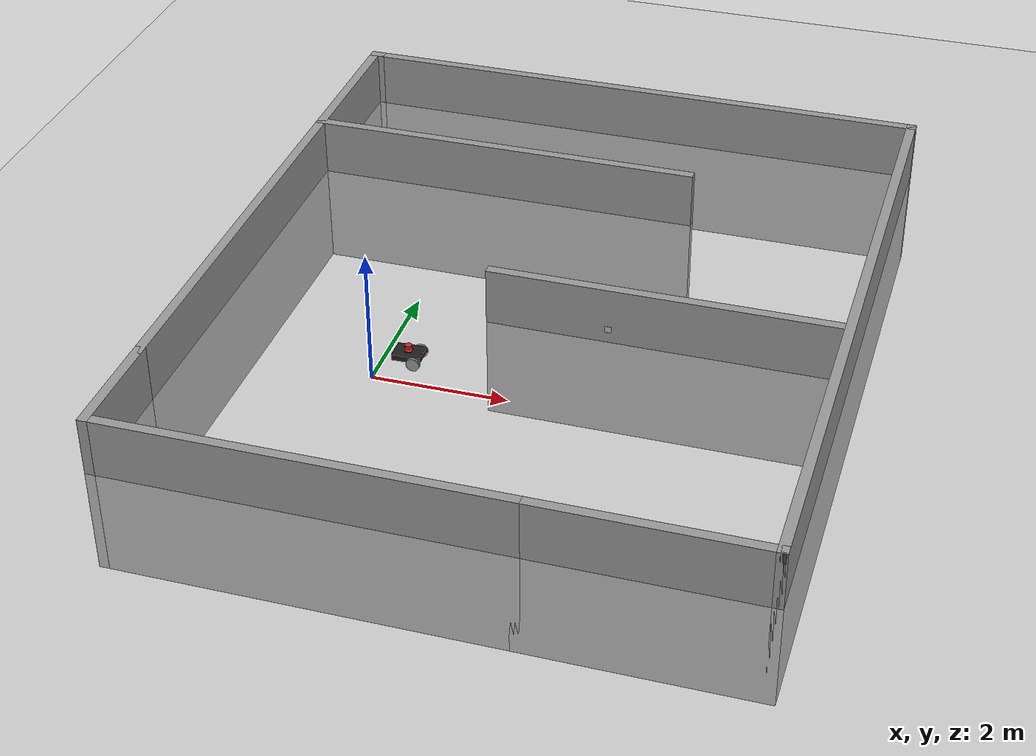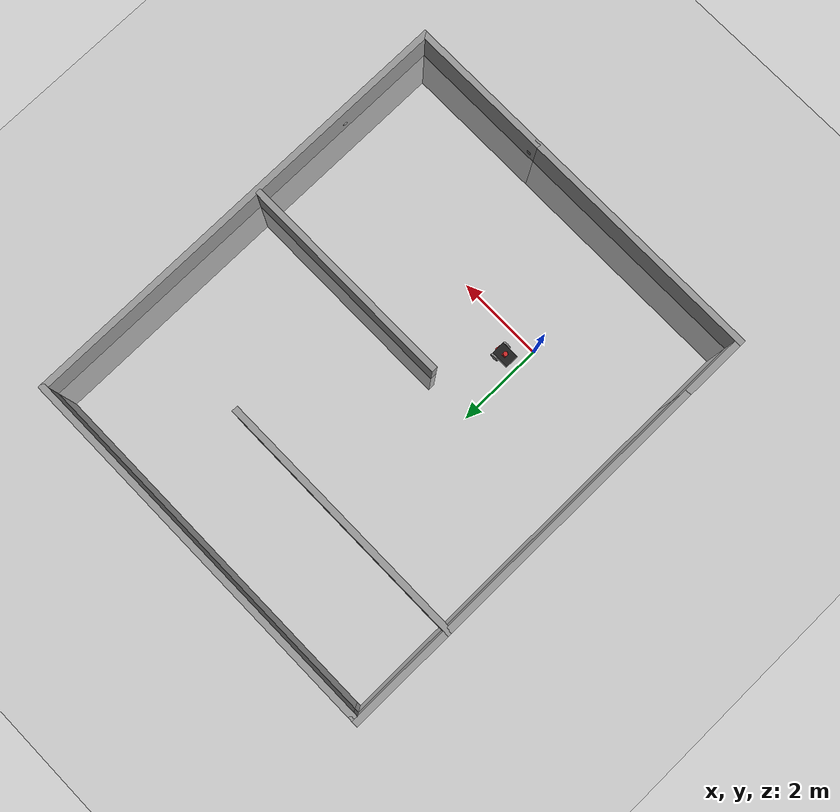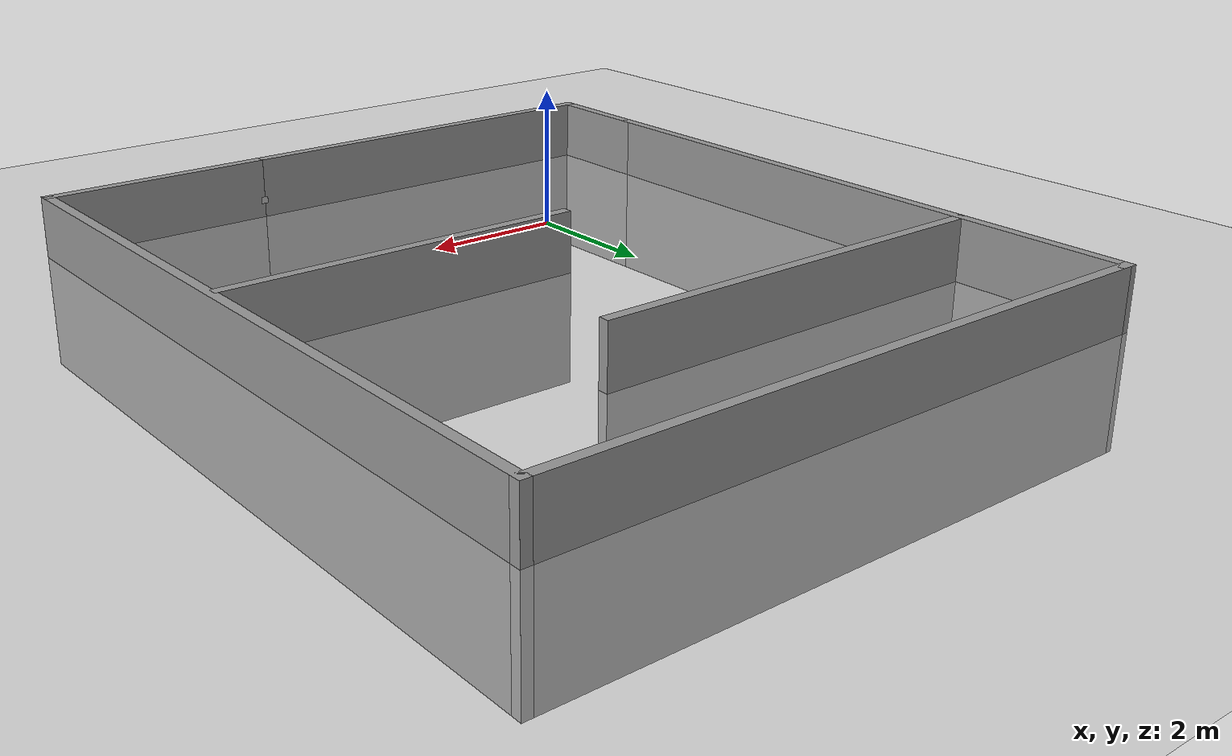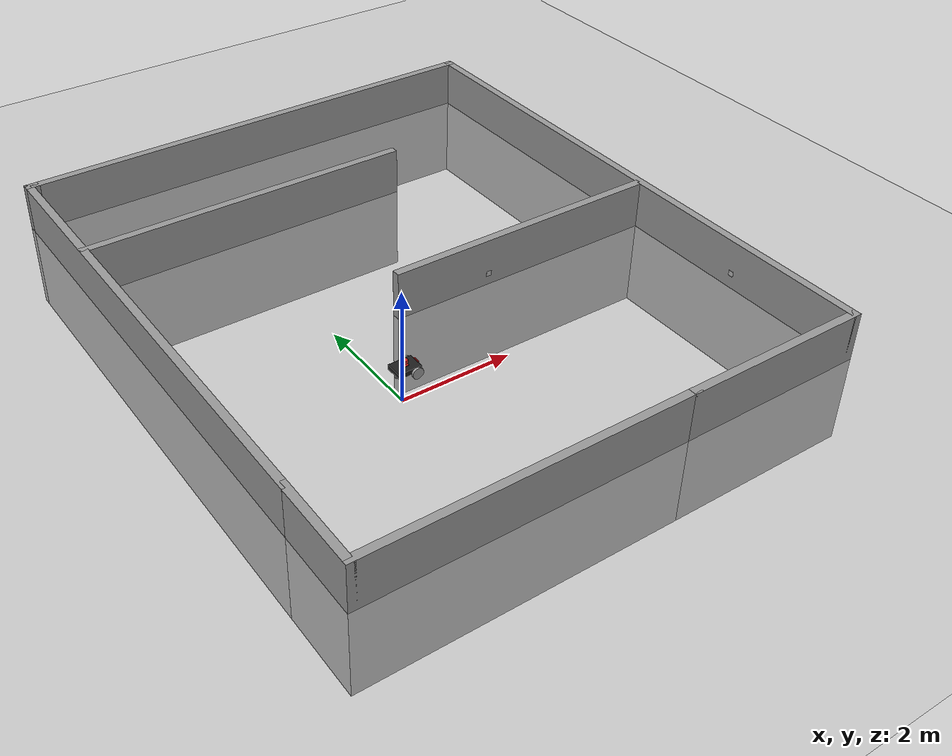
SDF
<sdf version="1.7">
 <world name="default">
  <model name="ground_plane">
   <static>1</static>
   <link name="link">
    <collision name="collision">
     <geometry><plane><normal>0 0 1</normal><size>100 100</size></plane></geometry>
     <surface><friction><ode><mu>100</mu><mu2>50</mu2></ode></friction></surface>
    </collision>
    <visual name="visual">
     <cast_shadows>0</cast_shadows>
     <geometry><plane><normal>0 0 1</normal><size>100 100</size></plane></geometry>
     <material>
      <script><uri>file://media/materials/scripts/gazebo.material</uri><name>Gazebo/Grey</name></script>
     </material>
    </visual>
   </link>
  </model>
  <light name="sun" type="directional">
   <pose>0 0 10 0 -0 0</pose>
   <diffuse>0.8 0.8 0.8 1</diffuse>
   <specular>0.2 0.2 0.2 1</specular>
   <attenuation>
    <range>1000</range>
    <constant>0.9</constant>
    <linear>0.01</linear>
    <quadratic>0.001</quadratic>
   </attenuation>
   <direction>-0.5 0.1 -0.9</direction>
   <spot><inner_angle>0</inner_angle><outer_angle>0</outer_angle><falloff>0</falloff></spot>
  </light>
  <scene><shadows>0</shadows><ambient>0.4 0.4 0.4 1</ambient><background>0.7 0.7 0.7 1</background></scene>
  <physics type="ode">
   <real_time_update_rate>1000</real_time_update_rate>
   <max_step_size>0.001</max_step_size>
   <real_time_factor>1</real_time_factor>
   <ode>
    <solver>
     <type>quick</type>
     <iters>150</iters>
     <precon_iters>0</precon_iters>
     <sor>1.4</sor>
     <use_dynamic_moi_rescaling>1</use_dynamic_moi_rescaling>
    </solver>
    <constraints>
     <cfm>1e-05</cfm>
     <erp>0.2</erp>
     <contact_max_correcting_vel>2000</contact_max_correcting_vel>
     <contact_surface_layer>0.01</contact_surface_layer>
    </constraints>
   </ode>
  </physics>
  <model name="maze">
   <pose>-0.00079 0.099055 -1.63073 0 -0 0</pose>
   <static>1</static>
   <frame name="maze::__model__" attached_to="maze::Wall_0">
    <pose relative_to="__model__">1.79 2.305 0 0 -0 0</pose>
   </frame>
   <link name="maze::Wall_0">
    <collision name="Wall_0_Collision">
     <geometry><box><size>1.75 0.15 2.5</size></box></geometry>
     <pose>0 0 1.25 0 -0 0</pose>
    </collision>
    <visual name="Wall_0_Visual">
     <pose>0 0 1.25 0 -0 0</pose>
     <geometry><box><size>1.75 0.15 2.5</size></box></geometry>
     <material>
      <script><uri>file://media/materials/scripts/gazebo.material</uri><name>Gazebo/Grey</name></script>
      <ambient>1 1 1 1</ambient>
     </material>
     <meta><layer>0</layer></meta>
    </visual>
    <pose relative_to="maze::__model__">-4.6 -4.625 0 0 -0 -1.5708</pose>
   </link>
   <link name="maze::Wall_1">
    <collision name="Wall_1_Collision">
     <geometry><box><size>6 0.15 2.5</size></box></geometry>
     <pose>0 0 1.25 0 -0 0</pose>
    </collision>
    <visual name="Wall_1_Visual">
     <pose>0 0 1.25 0 -0 0</pose>
     <geometry><box><size>6 0.15 2.5</size></box></geometry>
     <material>
      <script><uri>file://media/materials/scripts/gazebo.material</uri><name>Gazebo/Grey</name></script>
      <ambient>1 1 1 1</ambient>
     </material>
     <meta><layer>0</layer></meta>
    </visual>
    <pose relative_to="maze::__model__">-1.675 -5.425 0 0 -0 0</pose>
   </link>
   <link name="maze::Wall_11">
    <collision name="Wall_11_Collision">
     <geometry><box><size>6.25 0.15 2.5</size></box></geometry>
     <pose>0 0 1.25 0 -0 0</pose>
    </collision>
    <visual name="Wall_11_Visual">
     <pose>0 0 1.25 0 -0 0</pose>
     <geometry><box><size>6.25 0.15 2.5</size></box></geometry>
     <material>
      <script><uri>file://media/materials/scripts/gazebo.material</uri><name>Gazebo/Grey</name></script>
      <ambient>1 1 1 1</ambient>
     </material>
     <meta><layer>0</layer></meta>
    </visual>
    <pose relative_to="maze::__model__">-1.54942 2.92825 0 0 -0 0</pose>
   </link>
   <link name="maze::Wall_13">
    <collision name="Wall_13_Collision">
     <geometry><box><size>5.25 0.15 2.5</size></box></geometry>
     <pose>0 0 1.25 0 -0 0</pose>
    </collision>
    <visual name="Wall_13_Visual">
     <pose>0 0 1.25 0 -0 0</pose>
     <geometry><box><size>5.25 0.15 2.5</size></box></geometry>
     <material>
      <script><uri>file://media/materials/scripts/gazebo.material</uri><name>Gazebo/Grey</name></script>
      <ambient>1 1 1 1</ambient>
     </material>
     <meta><layer>0</layer></meta>
    </visual>
    <pose relative_to="maze::__model__">1.94541 -0.534779 0 0 -0 3.14159</pose>
   </link>
   <link name="maze::Wall_5">
    <collision name="Wall_5_Collision">
     <geometry><box><size>3.5 0.15 2.5</size></box></geometry>
     <pose>0 0 1.25 0 -0 0</pose>
    </collision>
    <visual name="Wall_5_Visual">
     <pose>0 0 1.25 0 -0 0</pose>
     <geometry><box><size>3.5 0.15 2.5</size></box></geometry>
     <material>
      <script><uri>file://media/materials/scripts/gazebo.material</uri><name>Gazebo/Grey</name></script>
      <ambient>1 1 1 1</ambient>
     </material>
     <meta><layer>0</layer></meta>
    </visual>
    <pose relative_to="maze::__model__">2.925 -5.425 0 0 -0 0</pose>
   </link>
   <link name="maze::Wall_6">
    <collision name="Wall_6_Collision">
     <geometry><box><size>11 0.15 2.5</size></box></geometry>
     <pose>0 0 1.25 0 -0 0</pose>
    </collision>
    <visual name="Wall_6_Visual">
     <pose>0 0 1.25 0 -0 0</pose>
     <geometry><box><size>11 0.15 2.5</size></box></geometry>
     <material>
      <script><uri>file://media/materials/scripts/gazebo.material</uri><name>Gazebo/Grey</name></script>
      <ambient>1 1 1 1</ambient>
     </material>
     <meta><layer>0</layer></meta>
    </visual>
    <pose relative_to="maze::__model__">4.6 0 0 0 -0 1.5708</pose>
   </link>
   <link name="maze::Wall_7">
    <collision name="Wall_7_Collision">
     <geometry><box><size>9.25 0.15 2.5</size></box></geometry>
     <pose>0 0 1.25 0 -0 0</pose>
    </collision>
    <visual name="Wall_7_Visual">
     <pose>0 0 1.25 0 -0 0</pose>
     <geometry><box><size>9.25 0.15 2.5</size></box></geometry>
     <material>
      <script><uri>file://media/materials/scripts/gazebo.material</uri><name>Gazebo/Grey</name></script>
      <ambient>1 1 1 1</ambient>
     </material>
     <meta><layer>0</layer></meta>
    </visual>
    <pose relative_to="maze::__model__">0.05 5.425 0 0 -0 3.14159</pose>
   </link>
   <link name="maze::Wall_8">
    <collision name="Wall_8_Collision">
     <geometry><box><size>0.25 0.15 2.5</size></box></geometry>
     <pose>0 0 1.25 0 -0 0</pose>
    </collision>
    <visual name="Wall_8_Visual">
     <pose>0 0 1.25 0 -0 0</pose>
     <geometry><box><size>0.25 0.15 2.5</size></box></geometry>
     <material>
      <script><uri>file://media/materials/scripts/gazebo.material</uri><name>Gazebo/Grey</name></script>
      <ambient>1 1 1 1</ambient>
     </material>
     <meta><layer>0</layer></meta>
    </visual>
    <pose relative_to="maze::__model__">-4.55 5.425 0 0 -0 3.14159</pose>
   </link>
   <link name="maze::Wall_9">
    <collision name="Wall_9_Collision">
     <geometry><box><size>9.4 0.15 2.5</size></box></geometry>
     <pose>0 0 1.25 0 -0 0</pose>
    </collision>
    <visual name="Wall_9_Visual">
     <pose>0 0 1.25 0 -0 0</pose>
     <geometry><box><size>9.4 0.15 2.5</size></box></geometry>
     <material>
      <script><uri>file://media/materials/scripts/gazebo.material</uri><name>Gazebo/Grey</name></script>
      <ambient>1 1 1 1</ambient>
     </material>
     <meta><layer>0</layer></meta>
    </visual>
    <pose relative_to="maze::__model__">-4.6 0.8 0 0 -0 -1.5708</pose>
   </link>
   <static>1</static>
  </model>
  <gravity>0 0 -9.8</gravity>
  <magnetic_field>6e-06 2.3e-05 -4.2e-05</magnetic_field>
  <atmosphere type="adiabatic"/>
  <audio><device>default</device></audio>
  <spherical_coordinates>
   <surface_model>EARTH_WGS84</surface_model>
   <latitude_deg>0</latitude_deg>
   <longitude_deg>0</longitude_deg>
   <elevation>0</elevation>
   <heading_deg>0</heading_deg>
  </spherical_coordinates>
  <model name="mobile_robot">
   <link name="base_footprint">
    <inertial>
     <pose>-0.123964 0 0.148112 1.5708 -0 1.5708</pose>
     <mass>15.76</mass>
     <inertia>
      <ixx>0.250867</ixx>
      <ixy>-1.95697e-18</ixy>
      <ixz>-3.16426e-18</ixz>
      <iyy>0.354513</iyy>
      <iyz>-0.00690832</iyz>
      <izz>0.139322</izz>
     </inertia>
    </inertial>
    <collision name="base_footprint_fixed_joint_lump__base_link_collision">
     <pose>-0.12 0 0.15 0 -0 0</pose>
     <geometry><box><size>0.42 0.31 0.09</size></box></geometry>
    </collision>
    <collision name="base_footprint_fixed_joint_lump__camera_link_collision_1">
     <pose>0.095 0 0.2 0 -0 0</pose>
     <geometry><box><size>0.015 0.13 0.022</size></box></geometry>
    </collision>
    <collision name="base_footprint_fixed_joint_lump__caster_link_collision_2">
     <pose>-0.26 0 0.055 0 -0 0</pose>
     <geometry><sphere><radius>0.0525</radius></sphere></geometry>
     <surface>
      <contact><ode><kp>1e+07</kp><kd>1000</kd><max_vel>1</max_vel><min_depth>0.001</min_depth></ode></contact>
      <friction><ode><mu>0.1</mu><mu2>0.1</mu2></ode></friction>
     </surface>
    </collision>
    <collision name="base_footprint_fixed_joint_lump__imu_link_collision_3">
     <pose>-0.12 0 0.16 0 -0 0</pose>
     <geometry><box><size>0.1 0.1 0.1</size></box></geometry>
    </collision>
    <collision name="base_footprint_fixed_joint_lump__lidar_link_collision_4">
     <pose>-0.12 0 0.27 0 -0 0</pose>
     <geometry><cylinder><length>0.055</length><radius>0.0508</radius></cylinder></geometry>
    </collision>
    <visual name="base_footprint_fixed_joint_lump__base_link_visual">
     <pose>-0.12 0 0.15 0 -0 0</pose>
     <geometry><box><size>0.42 0.31 0.09</size></box></geometry>
     <material>
      <script><name>Gazebo/FlatBlack</name><uri>file://media/materials/scripts/gazebo.material</uri></script>
     </material>
    </visual>
    <visual name="base_footprint_fixed_joint_lump__camera_link_visual_1">
     <pose>0.095 0 0.2 0 -0 0</pose>
     <geometry><box><size>0.015 0.13 0.022</size></box></geometry>
     <material>
      <script><name>Gazebo/Red</name><uri>file://media/materials/scripts/gazebo.material</uri></script>
     </material>
    </visual>
    <visual name="base_footprint_fixed_joint_lump__caster_link_visual_2">
     <pose>-0.26 0 0.055 0 -0 0</pose>
     <geometry><sphere><radius>0.0525</radius></sphere></geometry>
     <material>
      <script><name>Gazebo/Grey</name><uri>file://media/materials/scripts/gazebo.material</uri></script>
     </material>
    </visual>
    <visual name="base_footprint_fixed_joint_lump__imu_link_visual_3">
     <pose>-0.12 0 0.16 0 -0 0</pose>
     <geometry><box><size>0.1 0.1 0.1</size></box></geometry>
     <material>
      <script><name>Gazebo/Red</name><uri>file://media/materials/scripts/gazebo.material</uri></script>
     </material>
    </visual>
    <visual name="base_footprint_fixed_joint_lump__lidar_link_visual_4">
     <pose>-0.12 0 0.27 0 -0 0</pose>
     <geometry><cylinder><length>0.055</length><radius>0.0508</radius></cylinder></geometry>
     <material>
      <script><name>Gazebo/Red</name><uri>file://media/materials/scripts/gazebo.material</uri></script>
     </material>
    </visual>
    <sensor name="pi_camera" type="camera">
     <update_rate>30</update_rate>
     <always_on>1</always_on>
     <visualize>1</visualize>
     <camera>
      <horizontal_fov>1.0856</horizontal_fov>
      <image><width>640</width><height>480</height><format>R8G8B8</format></image>
      <clip><near>0.03</near><far>100</far></clip>
      <noise><type>gaussian</type><mean>0</mean><stddev>0.007</stddev></noise>
     </camera>
     <plugin name="camera_controller" filename="libgazebo_ros_camera.so">
      <ros><remapping>image_raw:=image_raw</remapping><remapping>camera_info:=camera_info</remapping></ros>
     </plugin>
     <pose>0.095 0 0.2 0 -0 0</pose>
    </sensor>
    <sensor name="imu_sensor" type="imu">
     <plugin name="imu_plugin" filename="libgazebo_ros_imu_sensor.so">
      <ros><remapping>~/out:=imu</remapping></ros>
      <initial_orientation_as_reference>1</initial_orientation_as_reference>
     </plugin>
     <always_on>1</always_on>
     <update_rate>100</update_rate>
     <visualize>1</visualize>
     <imu>
      <angular_velocity>
       <x>
        <noise type="gaussian">
         <mean>0</mean>
         <stddev>0.0002</stddev>
         <bias_mean>7.5e-06</bias_mean>
         <bias_stddev>8e-07</bias_stddev>
        </noise>
       </x>
       <y>
        <noise type="gaussian">
         <mean>0</mean>
         <stddev>0.0002</stddev>
         <bias_mean>7.5e-06</bias_mean>
         <bias_stddev>8e-07</bias_stddev>
        </noise>
       </y>
       <z>
        <noise type="gaussian">
         <mean>0</mean>
         <stddev>0.0002</stddev>
         <bias_mean>7.5e-06</bias_mean>
         <bias_stddev>8e-07</bias_stddev>
        </noise>
       </z>
      </angular_velocity>
      <linear_acceleration>
       <x>
        <noise type="gaussian">
         <mean>0</mean>
         <stddev>0.017</stddev>
         <bias_mean>0.1</bias_mean>
         <bias_stddev>0.001</bias_stddev>
        </noise>
       </x>
       <y>
        <noise type="gaussian">
         <mean>0</mean>
         <stddev>0.017</stddev>
         <bias_mean>0.1</bias_mean>
         <bias_stddev>0.001</bias_stddev>
        </noise>
       </y>
       <z>
        <noise type="gaussian">
         <mean>0</mean>
         <stddev>0.017</stddev>
         <bias_mean>0.1</bias_mean>
         <bias_stddev>0.001</bias_stddev>
        </noise>
       </z>
      </linear_acceleration>
     </imu>
     <pose>-0.12 0 0.16 0 -0 0</pose>
    </sensor>
    <sensor name="lds_lfcd_sensor" type="ray">
     <always_on>1</always_on>
     <update_rate>5</update_rate>
     <visualize>1</visualize>
     <ray>
      <scan>
       <horizontal>
        <samples>360</samples>
        <resolution>1</resolution>
        <min_angle>0</min_angle>
        <max_angle>6.28319</max_angle>
       </horizontal>
       <vertical><samples>1</samples><min_angle>0</min_angle><max_angle>0</max_angle></vertical>
      </scan>
      <range><min>0.3</min><max>10.5</max><resolution>0.015</resolution></range>
      <noise><type>gaussian</type><mean>0</mean><stddev>0.01</stddev></noise>
     </ray>
     <plugin name="gazebo_ros_lds_lfcd_controller" filename="libgazebo_ros_ray_sensor.so">
      <ros><remapping>~/out:=scan</remapping></ros>
      <output_type>sensor_msgs/LaserScan</output_type>
     </plugin>
     <pose>-0.12 0 0.27 0 -0 0</pose>
    </sensor>
   </link>
   <joint name="wheel_left_joint" type="revolute">
    <pose relative_to="base_footprint">0 0.18 0.1 0 -0 0</pose>
    <parent>base_footprint</parent>
    <child>wheel_left_link</child>
    <axis>
     <xyz>0 1 0</xyz>
     <limit><lower>-1e+16</lower><upper>1e+16</upper></limit>
     <dynamics><spring_reference>0</spring_reference><spring_stiffness>0</spring_stiffness></dynamics>
    </axis>
   </joint>
   <link name="wheel_left_link">
    <pose relative_to="wheel_left_joint">0 0 0 0 -0 0</pose>
    <inertial>
     <pose>0 0 0 1.5708 -0 0</pose>
     <mass>0.5</mass>
     <inertia>
      <ixx>0.00131667</ixx>
      <ixy>0</ixy>
      <ixz>0</ixz>
      <iyy>0.00131667</iyy>
      <iyz>0</iyz>
      <izz>0.0025</izz>
     </inertia>
    </inertial>
    <collision name="wheel_left_link_collision">
     <pose>0 0 0 1.5708 -0 0</pose>
     <geometry><cylinder><length>0.04</length><radius>0.1</radius></cylinder></geometry>
     <surface>
      <contact><ode><kp>5e+08</kp><kd>10000</kd><max_vel>0.1</max_vel><min_depth>0.001</min_depth></ode></contact>
      <friction><ode><mu>1e+07</mu><mu2>1e+07</mu2><fdir1>1 0 0</fdir1></ode></friction>
     </surface>
    </collision>
    <visual name="wheel_left_link_visual">
     <pose>0 0 0 1.5708 -0 0</pose>
     <geometry><cylinder><length>0.04</length><radius>0.1</radius></cylinder></geometry>
     <material>
      <script><name>Gazebo/Grey</name><uri>file://media/materials/scripts/gazebo.material</uri></script>
     </material>
    </visual>
   </link>
   <joint name="wheel_right_joint" type="revolute">
    <pose relative_to="base_footprint">0 -0.18 0.1 0 -0 0</pose>
    <parent>base_footprint</parent>
    <child>wheel_right_link</child>
    <axis>
     <xyz>0 1 0</xyz>
     <limit><lower>-1e+16</lower><upper>1e+16</upper></limit>
     <dynamics><spring_reference>0</spring_reference><spring_stiffness>0</spring_stiffness></dynamics>
    </axis>
   </joint>
   <link name="wheel_right_link">
    <pose relative_to="wheel_right_joint">0 0 0 0 -0 0</pose>
    <inertial>
     <pose>0 0 0 1.5708 -0 0</pose>
     <mass>0.5</mass>
     <inertia>
      <ixx>0.00131667</ixx>
      <ixy>0</ixy>
      <ixz>0</ixz>
      <iyy>0.00131667</iyy>
      <iyz>0</iyz>
      <izz>0.0025</izz>
     </inertia>
    </inertial>
    <collision name="wheel_right_link_collision">
     <pose>0 0 0 1.5708 -0 0</pose>
     <geometry><cylinder><length>0.04</length><radius>0.1</radius></cylinder></geometry>
     <surface>
      <contact><ode><kp>5e+08</kp><kd>10000</kd><max_vel>0.1</max_vel><min_depth>0.001</min_depth></ode></contact>
      <friction><ode><mu>1e+07</mu><mu2>1e+07</mu2><fdir1>1 0 0</fdir1></ode></friction>
     </surface>
    </collision>
    <visual name="wheel_right_link_visual">
     <pose>0 0 0 1.5708 -0 0</pose>
     <geometry><cylinder><length>0.04</length><radius>0.1</radius></cylinder></geometry>
     <material>
      <script><name>Gazebo/Grey</name><uri>file://media/materials/scripts/gazebo.material</uri></script>
     </material>
    </visual>
   </link>
   <static>0</static>
   <plugin name="diff_drive" filename="libgazebo_ros_diff_drive.so">
    <ros><remapping>cmd_vel:=cmd_vel</remapping><remapping>odom:=odom</remapping></ros>
    <left_joint>wheel_left_joint</left_joint>
    <right_joint>wheel_right_joint</right_joint>
    <wheel_separation>0.35</wheel_separation>
    <wheel_diameter>0.20</wheel_diameter>
    <max_wheel_torque>40</max_wheel_torque>
    <max_wheel_acceleration>1.0</max_wheel_acceleration>
    <publish_odom>1</publish_odom>
    <publish_odom_tf>1</publish_odom_tf>
    <publish_wheel_tf>1</publish_wheel_tf>
    <odometry_frame>odom</odometry_frame>
    <robot_base_frame>base_footprint</robot_base_frame>
   </plugin>
   <pose>0.498651 0.499945 3e-06 0 -0.009644 0.000782</pose>
  </model>
  <model name="marker23">
   <static>1</static>
   <link name="link">
    <visual name="visual">
     <geometry><mesh><uri>model://marker23/meshes/marker23.dae</uri><scale>0.2 0.2 0.2</scale></mesh></geometry>
    </visual>
   </link>
   <pose>6.31284 -0.573076 0.209185 0 -0 0</pose>
  </model>
  <model name="marker23_clone">
   <static>1</static>
   <link name="link">
    <visual name="visual">
     <geometry><mesh><uri>model://marker23/meshes/marker23.dae</uri><scale>0.2 0.2 0.2</scale></mesh></geometry>
    </visual>
   </link>
   <pose>3.12238 -2.94279 0.196924 0 0 -1.64005</pose>
  </model>
  <model name="marker23_clone_0">
   <static>1</static>
   <link name="link">
    <visual name="visual">
     <geometry><mesh><uri>model://marker23/meshes/marker23.dae</uri><scale>0.2 0.2 0.2</scale></mesh></geometry>
    </visual>
   </link>
   <pose>2.95491 1.78312 0.161715 0 0 -1.6196</pose>
  </model>
 </world>
</sdf>
